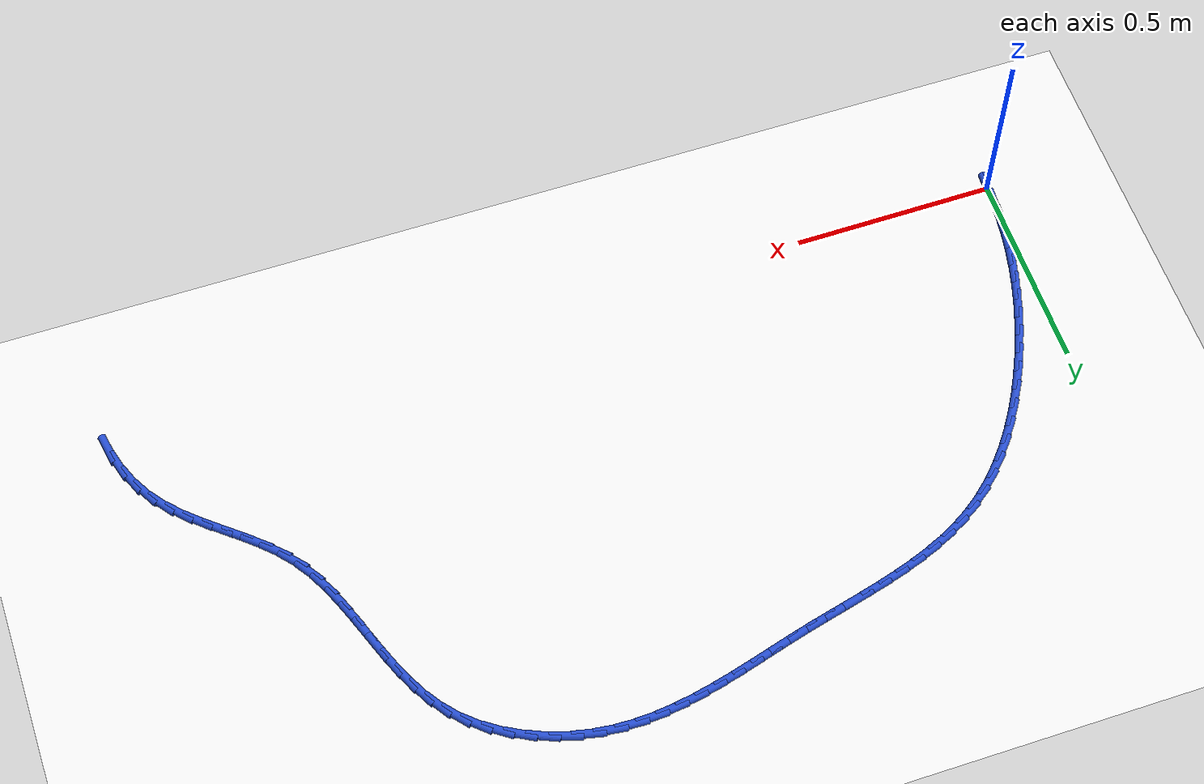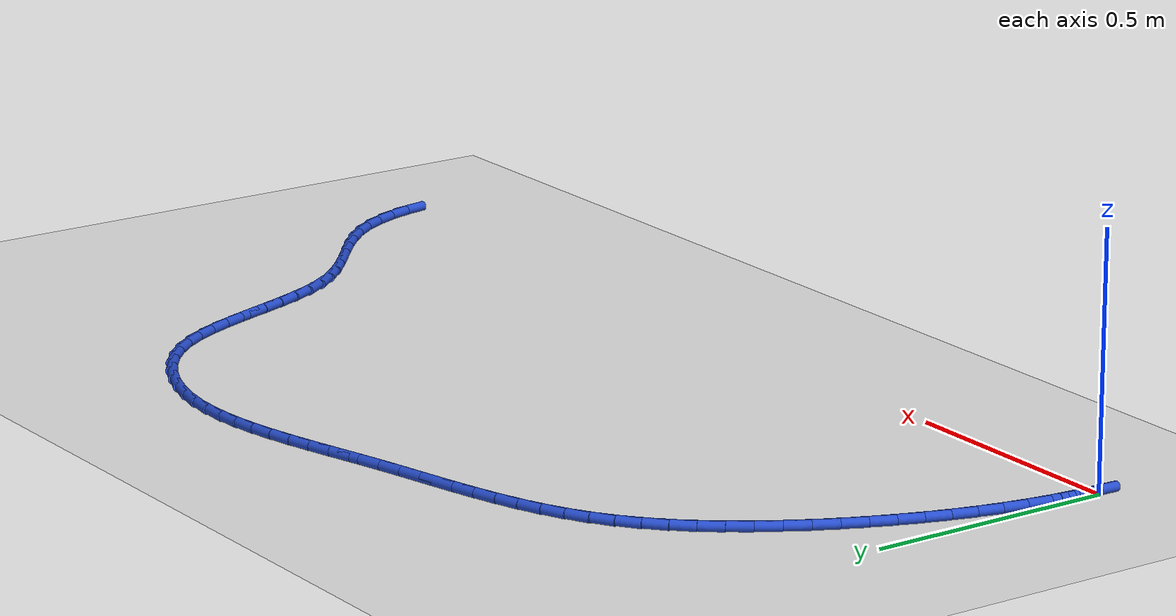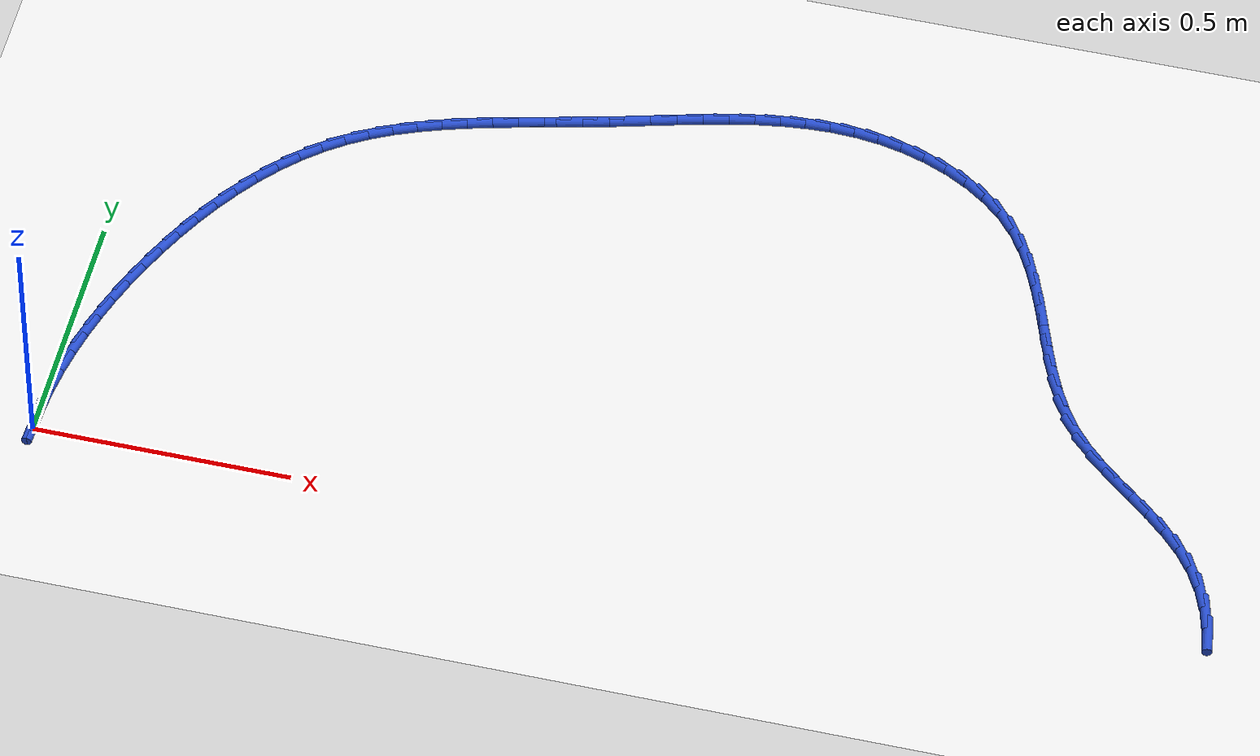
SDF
<sdf version="1.6">
 <world name="default">
  <model name="ground_plane">
   <static>1</static>
   <link name="link">
    <collision name="collision">
     <geometry><plane><normal>0 0 1</normal><size>100 100</size></plane></geometry>
     <surface><friction><ode><mu>100</mu><mu2>50</mu2></ode></friction></surface>
    </collision>
    <visual name="visual">
     <cast_shadows>0</cast_shadows>
     <geometry><plane><normal>0 0 1</normal><size>100 100</size></plane></geometry>
     <material>
      <script><uri>file://media/materials/scripts/gazebo.material</uri><name>Gazebo/WhiteGlow</name></script>
     </material>
    </visual>
   </link>
  </model>
  <model name="line">
   <link name="link_0">
    <pose>-3.8163916471489756e-17 0.0 0.01 0 1.57 1.53081087506077</pose>
    <collision name="collision">
     <geometry><cylinder><radius>0.01</radius><length>0.08</length></cylinder></geometry>
    </collision>
    <visual name="visual">
     <material>
      <script><name>Gazebo/Blue</name><uri>file://media/materials/scripts/gazebo.material</uri></script>
     </material>
     <geometry><cylinder><radius>0.01</radius><length>0.08</length></cylinder></geometry>
    </visual>
   </link>
   <link name="link_1">
    <pose>0.001979722527505519 0.04948468118032241 0.01 0 1.57 1.4807791218871105</pose>
    <collision name="collision">
     <geometry><cylinder><radius>0.01</radius><length>0.08</length></cylinder></geometry>
    </collision>
    <visual name="visual">
     <material>
      <script><name>Gazebo/Blue</name><uri>file://media/materials/scripts/gazebo.material</uri></script>
     </material>
     <geometry><cylinder><radius>0.01</radius><length>0.08</length></cylinder></geometry>
    </visual>
   </link>
   <link name="link_2">
    <pose>0.0064161780831841105 0.09863601921336904 0.01 0 1.57 1.4322933718045248</pose>
    <collision name="collision">
     <geometry><cylinder><radius>0.01</radius><length>0.08</length></cylinder></geometry>
    </collision>
    <visual name="visual">
     <material>
      <script><name>Gazebo/Blue</name><uri>file://media/materials/scripts/gazebo.material</uri></script>
     </material>
     <geometry><cylinder><radius>0.01</radius><length>0.08</length></cylinder></geometry>
    </visual>
   </link>
   <link name="link_3">
    <pose>0.013221445217248372 0.14745588793199746 0.01 0 1.57 1.3855633104081833</pose>
    <collision name="collision">
     <geometry><cylinder><radius>0.01</radius><length>0.08</length></cylinder></geometry>
    </collision>
    <visual name="visual">
     <material>
      <script><name>Gazebo/Blue</name><uri>file://media/materials/scripts/gazebo.material</uri></script>
     </material>
     <geometry><cylinder><radius>0.01</radius><length>0.08</length></cylinder></geometry>
    </visual>
   </link>
   <link name="link_4">
    <pose>0.022307602479910926 0.1959461611690652 0.01 0 1.57 1.3407533342091134</pose>
    <collision name="collision">
     <geometry><cylinder><radius>0.01</radius><length>0.08</length></cylinder></geometry>
    </collision>
    <visual name="visual">
     <material>
      <script><name>Gazebo/Blue</name><uri>file://media/materials/scripts/gazebo.material</uri></script>
     </material>
     <geometry><cylinder><radius>0.01</radius><length>0.08</length></cylinder></geometry>
    </visual>
   </link>
   <link name="link_5">
    <pose>0.033586728421384465 0.24410871275742999 0.01 0 1.57 1.297983495147994</pose>
    <collision name="collision">
     <geometry><cylinder><radius>0.01</radius><length>0.08</length></cylinder></geometry>
    </collision>
    <visual name="visual">
     <material>
      <script><name>Gazebo/Blue</name><uri>file://media/materials/scripts/gazebo.material</uri></script>
     </material>
     <geometry><cylinder><radius>0.01</radius><length>0.08</length></cylinder></geometry>
    </visual>
   </link>
   <link name="link_6">
    <pose>0.04697090159188157 0.2919454165299492 0.01 0 1.57 1.2573325092678005</pose>
    <collision name="collision">
     <geometry><cylinder><radius>0.01</radius><length>0.08</length></cylinder></geometry>
    </collision>
    <visual name="visual">
     <material>
      <script><name>Gazebo/Blue</name><uri>file://media/materials/scripts/gazebo.material</uri></script>
     </material>
     <geometry><cylinder><radius>0.01</radius><length>0.08</length></cylinder></geometry>
    </visual>
   </link>
   <link name="link_7">
    <pose>0.06237220054161491 0.33945814631948057 0.01 0 1.57 1.2188421979531288</pose>
    <collision name="collision">
     <geometry><cylinder><radius>0.01</radius><length>0.08</length></cylinder></geometry>
    </collision>
    <visual name="visual">
     <material>
      <script><name>Gazebo/Blue</name><uri>file://media/materials/scripts/gazebo.material</uri></script>
     </material>
     <geometry><cylinder><radius>0.01</radius><length>0.08</length></cylinder></geometry>
    </visual>
   </link>
   <link name="link_8">
    <pose>0.07970270382079712 0.38664877595888164 0.01 0 1.57 1.1825227483022343</pose>
    <collision name="collision">
     <geometry><cylinder><radius>0.01</radius><length>0.08</length></cylinder></geometry>
    </collision>
    <visual name="visual">
     <material>
      <script><name>Gazebo/Blue</name><uri>file://media/materials/scripts/gazebo.material</uri></script>
     </material>
     <geometry><cylinder><radius>0.01</radius><length>0.08</length></cylinder></geometry>
    </visual>
   </link>
   <link name="link_9">
    <pose>0.09887448997964086 0.43351917928101014 0.01 0 1.57 1.147494360723241</pose>
    <collision name="collision">
     <geometry><cylinder><radius>0.01</radius><length>0.08</length></cylinder></geometry>
    </collision>
    <visual name="visual">
     <material>
      <script><name>Gazebo/Blue</name><uri>file://media/materials/scripts/gazebo.material</uri></script>
     </material>
     <geometry><cylinder><radius>0.01</radius><length>0.08</length></cylinder></geometry>
    </visual>
   </link>
   <link name="link_10">
    <pose>0.11982236632792301 0.48001433748194094 0.01 0 1.57 1.1100176047385018</pose>
    <collision name="collision">
     <geometry><cylinder><radius>0.01</radius><length>0.08</length></cylinder></geometry>
    </collision>
    <visual name="visual">
     <material>
      <script><name>Gazebo/Blue</name><uri>file://media/materials/scripts/gazebo.material</uri></script>
     </material>
     <geometry><cylinder><radius>0.01</radius><length>0.08</length></cylinder></geometry>
    </visual>
   </link>
   <link name="link_11">
    <pose>0.14257420913017707 0.525846269715818 0.01 0 1.57 1.0687088998159535</pose>
    <collision name="collision">
     <geometry><cylinder><radius>0.01</radius><length>0.08</length></cylinder></geometry>
    </collision>
    <visual name="visual">
     <material>
      <script><name>Gazebo/Blue</name><uri>file://media/materials/scripts/gazebo.material</uri></script>
     </material>
     <geometry><cylinder><radius>0.01</radius><length>0.08</length></cylinder></geometry>
    </visual>
   </link>
   <link name="link_12">
    <pose>0.16718171306497284 0.5706673749725314 0.01 0 1.57 1.0230122690982648</pose>
    <collision name="collision">
     <geometry><cylinder><radius>0.01</radius><length>0.08</length></cylinder></geometry>
    </collision>
    <visual name="visual">
     <material>
      <script><name>Gazebo/Blue</name><uri>file://media/materials/scripts/gazebo.material</uri></script>
     </material>
     <geometry><cylinder><radius>0.01</radius><length>0.08</length></cylinder></geometry>
    </visual>
   </link>
   <link name="link_13">
    <pose>0.19369657282194294 0.6141300522142797 0.01 0 1.57 0.972320734226884</pose>
    <collision name="collision">
     <geometry><cylinder><radius>0.01</radius><length>0.08</length></cylinder></geometry>
    </collision>
    <visual name="visual">
     <material>
      <script><name>Gazebo/Blue</name><uri>file://media/materials/scripts/gazebo.material</uri></script>
     </material>
     <geometry><cylinder><radius>0.01</radius><length>0.08</length></cylinder></geometry>
    </visual>
   </link>
   <link name="link_14">
    <pose>0.2221704830907201 0.6558867004032614 0.01 0 1.57 0.915989460977842</pose>
    <collision name="collision">
     <geometry><cylinder><radius>0.01</radius><length>0.08</length></cylinder></geometry>
    </collision>
    <visual name="visual">
     <material>
      <script><name>Gazebo/Blue</name><uri>file://media/materials/scripts/gazebo.material</uri></script>
     </material>
     <geometry><cylinder><radius>0.01</radius><length>0.08</length></cylinder></geometry>
    </visual>
   </link>
   <link name="link_15">
    <pose>0.25265513856093696 0.6955897185016748 0.01 0 1.57 0.8533644342717482</pose>
    <collision name="collision">
     <geometry><cylinder><radius>0.01</radius><length>0.08</length></cylinder></geometry>
    </collision>
    <visual name="visual">
     <material>
      <script><name>Gazebo/Blue</name><uri>file://media/materials/scripts/gazebo.material</uri></script>
     </material>
     <geometry><cylinder><radius>0.01</radius><length>0.08</length></cylinder></geometry>
    </visual>
   </link>
   <link name="link_16">
    <pose>0.2852022339222263 0.7328915054717189 0.01 0 1.57 0.7838338157106821</pose>
    <collision name="collision">
     <geometry><cylinder><radius>0.01</radius><length>0.08</length></cylinder></geometry>
    </collision>
    <visual name="visual">
     <material>
      <script><name>Gazebo/Blue</name><uri>file://media/materials/scripts/gazebo.material</uri></script>
     </material>
     <geometry><cylinder><radius>0.01</radius><length>0.08</length></cylinder></geometry>
    </visual>
   </link>
   <link name="link_17">
    <pose>0.31986346386422077 0.7674444602755917 0.01 0 1.57 0.7069092411978829</pose>
    <collision name="collision">
     <geometry><cylinder><radius>0.01</radius><length>0.08</length></cylinder></geometry>
    </collision>
    <visual name="visual">
     <material>
      <script><name>Gazebo/Blue</name><uri>file://media/materials/scripts/gazebo.material</uri></script>
     </material>
     <geometry><cylinder><radius>0.01</radius><length>0.08</length></cylinder></geometry>
    </visual>
   </link>
   <link name="link_18">
    <pose>0.35669052307655286 0.7989009818754916 0.01 0 1.57 0.6224150532274418</pose>
    <collision name="collision">
     <geometry><cylinder><radius>0.01</radius><length>0.08</length></cylinder></geometry>
    </collision>
    <visual name="visual">
     <material>
      <script><name>Gazebo/Blue</name><uri>file://media/materials/scripts/gazebo.material</uri></script>
     </material>
     <geometry><cylinder><radius>0.01</radius><length>0.08</length></cylinder></geometry>
    </visual>
   </link>
   <link name="link_19">
    <pose>0.39573379636541733 0.8269169212588227 0.01 0 1.57 0.5365468488485532</pose>
    <collision name="collision">
     <geometry><cylinder><radius>0.01</radius><length>0.08</length></cylinder></geometry>
    </collision>
    <visual name="visual">
     <material>
      <script><name>Gazebo/Blue</name><uri>file://media/materials/scripts/gazebo.material</uri></script>
     </material>
     <geometry><cylinder><radius>0.01</radius><length>0.08</length></cylinder></geometry>
    </visual>
   </link>
   <link name="link_20">
    <pose>0.43693913742727486 0.8514236073791587 0.01 0 1.57 0.4605530182431533</pose>
    <collision name="collision">
     <geometry><cylinder><radius>0.01</radius><length>0.08</length></cylinder></geometry>
    </collision>
    <visual name="visual">
     <material>
      <script><name>Gazebo/Blue</name><uri>file://media/materials/scripts/gazebo.material</uri></script>
     </material>
     <geometry><cylinder><radius>0.01</radius><length>0.08</length></cylinder></geometry>
    </visual>
   </link>
   <link name="link_21">
    <pose>0.4800733864922416 0.8728241355929346 0.01 0 1.57 0.39615801604458734</pose>
    <collision name="collision">
     <geometry><cylinder><radius>0.01</radius><length>0.08</length></cylinder></geometry>
    </collision>
    <visual name="visual">
     <material>
      <script><name>Gazebo/Blue</name><uri>file://media/materials/scripts/gazebo.material</uri></script>
     </material>
     <geometry><cylinder><radius>0.01</radius><length>0.08</length></cylinder></geometry>
    </visual>
   </link>
   <link name="link_22">
    <pose>0.5248858121714914 0.8915679089429837 0.01 0 1.57 0.3434493236026865</pose>
    <collision name="collision">
     <geometry><cylinder><radius>0.01</radius><length>0.08</length></cylinder></geometry>
    </collision>
    <visual name="visual">
     <material>
      <script><name>Gazebo/Blue</name><uri>file://media/materials/scripts/gazebo.material</uri></script>
     </material>
     <geometry><cylinder><radius>0.01</radius><length>0.08</length></cylinder></geometry>
    </visual>
   </link>
   <link name="link_23">
    <pose>0.5711256830761985 0.90810433047214 0.01 0 1.57 0.30213133555002225</pose>
    <collision name="collision">
     <geometry><cylinder><radius>0.01</radius><length>0.08</length></cylinder></geometry>
    </collision>
    <visual name="visual">
     <material>
      <script><name>Gazebo/Blue</name><uri>file://media/materials/scripts/gazebo.material</uri></script>
     </material>
     <geometry><cylinder><radius>0.01</radius><length>0.08</length></cylinder></geometry>
    </visual>
   </link>
   <link name="link_24">
    <pose>0.6185422678175366 0.9228828032232371 0.01 0 1.57 0.2717424104209548</pose>
    <collision name="collision">
     <geometry><cylinder><radius>0.01</radius><length>0.08</length></cylinder></geometry>
    </collision>
    <visual name="visual">
     <material>
      <script><name>Gazebo/Blue</name><uri>file://media/materials/scripts/gazebo.material</uri></script>
     </material>
     <geometry><cylinder><radius>0.01</radius><length>0.08</length></cylinder></geometry>
    </visual>
   </link>
   <link name="link_25">
    <pose>0.6668848350066798 0.9363527302391085 0.01 0 1.57 0.2518086556088177</pose>
    <collision name="collision">
     <geometry><cylinder><radius>0.01</radius><length>0.08</length></cylinder></geometry>
    </collision>
    <visual name="visual">
     <material>
      <script><name>Gazebo/Blue</name><uri>file://media/materials/scripts/gazebo.material</uri></script>
     </material>
     <geometry><cylinder><radius>0.01</radius><length>0.08</length></cylinder></geometry>
    </visual>
   </link>
   <link name="link_26">
    <pose>0.7159026532548021 0.9489635145625879 0.01 0 1.57 0.241939390597196</pose>
    <collision name="collision">
     <geometry><cylinder><radius>0.01</radius><length>0.08</length></cylinder></geometry>
    </collision>
    <visual name="visual">
     <material>
      <script><name>Gazebo/Blue</name><uri>file://media/materials/scripts/gazebo.material</uri></script>
     </material>
     <geometry><cylinder><radius>0.01</radius><length>0.08</length></cylinder></geometry>
    </visual>
   </link>
   <link name="link_27">
    <pose>0.7653449911730771 0.9611645592365086 0.01 0 1.57 0.241878161584756</pose>
    <collision name="collision">
     <geometry><cylinder><radius>0.01</radius><length>0.08</length></cylinder></geometry>
    </collision>
    <visual name="visual">
     <material>
      <script><name>Gazebo/Blue</name><uri>file://media/materials/scripts/gazebo.material</uri></script>
     </material>
     <geometry><cylinder><radius>0.01</radius><length>0.08</length></cylinder></geometry>
    </visual>
   </link>
   <link name="link_28">
    <pose>0.8149611173726793 0.9734052673037049 0.01 0 1.57 0.2515210322019817</pose>
    <collision name="collision">
     <geometry><cylinder><radius>0.01</radius><length>0.08</length></cylinder></geometry>
    </collision>
    <visual name="visual">
     <material>
      <script><name>Gazebo/Blue</name><uri>file://media/materials/scripts/gazebo.material</uri></script>
     </material>
     <geometry><cylinder><radius>0.01</radius><length>0.08</length></cylinder></geometry>
    </visual>
   </link>
   <link name="link_29">
    <pose>0.8645003147983724 0.9861349959404173 0.01 0 1.57 0.2668905871740424</pose>
    <collision name="collision">
     <geometry><cylinder><radius>0.01</radius><length>0.08</length></cylinder></geometry>
    </collision>
    <visual name="visual">
     <material>
      <script><name>Gazebo/Blue</name><uri>file://media/materials/scripts/gazebo.material</uri></script>
     </material>
     <geometry><cylinder><radius>0.01</radius><length>0.08</length></cylinder></geometry>
    </visual>
   </link>
   <link name="link_30">
    <pose>0.9137731926237459 0.9996068622212584 0.01 0 1.57 0.2748353361437529</pose>
    <collision name="collision">
     <geometry><cylinder><radius>0.01</radius><length>0.08</length></cylinder></geometry>
    </collision>
    <visual name="visual">
     <material>
      <script><name>Gazebo/Blue</name><uri>file://media/materials/scripts/gazebo.material</uri></script>
     </material>
     <geometry><cylinder><radius>0.01</radius><length>0.08</length></cylinder></geometry>
    </visual>
   </link>
   <link name="link_31">
    <pose>0.9627920031078606 1.0134287379425344 0.01 0 1.57 0.2725943795558558</pose>
    <collision name="collision">
     <geometry><cylinder><radius>0.01</radius><length>0.08</length></cylinder></geometry>
    </collision>
    <visual name="visual">
     <material>
      <script><name>Gazebo/Blue</name><uri>file://media/materials/scripts/gazebo.material</uri></script>
     </material>
     <geometry><cylinder><radius>0.01</radius><length>0.08</length></cylinder></geometry>
    </visual>
   </link>
   <link name="link_32">
    <pose>1.0116103808861336 1.0270760738810756 0.01 0 1.57 0.26001071186416236</pose>
    <collision name="collision">
     <geometry><cylinder><radius>0.01</radius><length>0.08</length></cylinder></geometry>
    </collision>
    <visual name="visual">
     <material>
      <script><name>Gazebo/Blue</name><uri>file://media/materials/scripts/gazebo.material</uri></script>
     </material>
     <geometry><cylinder><radius>0.01</radius><length>0.08</length></cylinder></geometry>
    </visual>
   </link>
   <link name="link_33">
    <pose>1.0602819605939822 1.0400243208137119 0.01 0 1.57 0.2368251089408114</pose>
    <collision name="collision">
     <geometry><cylinder><radius>0.01</radius><length>0.08</length></cylinder></geometry>
    </collision>
    <visual name="visual">
     <material>
      <script><name>Gazebo/Blue</name><uri>file://media/materials/scripts/gazebo.material</uri></script>
     </material>
     <geometry><cylinder><radius>0.01</radius><length>0.08</length></cylinder></geometry>
    </visual>
   </link>
   <link name="link_34">
    <pose>1.1088603768668228 1.0517489295172742 0.01 0 1.57 0.20271159090095395</pose>
    <collision name="collision">
     <geometry><cylinder><radius>0.01</radius><length>0.08</length></cylinder></geometry>
    </collision>
    <visual name="visual">
     <material>
      <script><name>Gazebo/Blue</name><uri>file://media/materials/scripts/gazebo.material</uri></script>
     </material>
     <geometry><cylinder><radius>0.01</radius><length>0.08</length></cylinder></geometry>
    </visual>
   </link>
   <link name="link_35">
    <pose>1.1573992643400726 1.0617253507685922 0.01 0 1.57 0.1573537947079281</pose>
    <collision name="collision">
     <geometry><cylinder><radius>0.01</radius><length>0.08</length></cylinder></geometry>
    </collision>
    <visual name="visual">
     <material>
      <script><name>Gazebo/Blue</name><uri>file://media/materials/scripts/gazebo.material</uri></script>
     </material>
     <geometry><cylinder><radius>0.01</radius><length>0.08</length></cylinder></geometry>
    </visual>
   </link>
   <link name="link_36">
    <pose>1.2059522576491486 1.0694290353444964 0.01 0 1.57 0.10057119876426046</pose>
    <collision name="collision">
     <geometry><cylinder><radius>0.01</radius><length>0.08</length></cylinder></geometry>
    </collision>
    <visual name="visual">
     <material>
      <script><name>Gazebo/Blue</name><uri>file://media/materials/scripts/gazebo.material</uri></script>
     </material>
     <geometry><cylinder><radius>0.01</radius><length>0.08</length></cylinder></geometry>
    </visual>
   </link>
   <link name="link_37">
    <pose>1.2545729914294677 1.0743354340218167 0.01 0 1.57 0.03249768492827597</pose>
    <collision name="collision">
     <geometry><cylinder><radius>0.01</radius><length>0.08</length></cylinder></geometry>
    </collision>
    <visual name="visual">
     <material>
      <script><name>Gazebo/Blue</name><uri>file://media/materials/scripts/gazebo.material</uri></script>
     </material>
     <geometry><cylinder><radius>0.01</radius><length>0.08</length></cylinder></geometry>
    </visual>
   </link>
   <link name="link_38">
    <pose>1.3033151003164465 1.0759199975773834 0.01 0 1.57 -0.04620490824820704</pose>
    <collision name="collision">
     <geometry><cylinder><radius>0.01</radius><length>0.08</length></cylinder></geometry>
    </collision>
    <visual name="visual">
     <material>
      <script><name>Gazebo/Blue</name><uri>file://media/materials/scripts/gazebo.material</uri></script>
     </material>
     <geometry><cylinder><radius>0.01</radius><length>0.08</length></cylinder></geometry>
    </visual>
   </link>
   <link name="link_39">
    <pose>1.352232218945503 1.0736581767880269 0.01 0 1.57 -0.13413293280615798</pose>
    <collision name="collision">
     <geometry><cylinder><radius>0.01</radius><length>0.08</length></cylinder></geometry>
    </collision>
    <visual name="visual">
     <material>
      <script><name>Gazebo/Blue</name><uri>file://media/materials/scripts/gazebo.material</uri></script>
     </material>
     <geometry><cylinder><radius>0.01</radius><length>0.08</length></cylinder></geometry>
    </visual>
   </link>
   <link name="link_40">
    <pose>1.401376419201328 1.0670265017133975 0.01 0 1.57 -0.22668272803391348</pose>
    <collision name="collision">
     <geometry><cylinder><radius>0.01</radius><length>0.08</length></cylinder></geometry>
    </collision>
    <visual name="visual">
     <material>
      <script><name>Gazebo/Blue</name><uri>file://media/materials/scripts/gazebo.material</uri></script>
     </material>
     <geometry><cylinder><radius>0.01</radius><length>0.08</length></cylinder></geometry>
    </visual>
   </link>
   <link name="link_41">
    <pose>1.4505266011161937 1.0556901631399138 0.01 0 1.57 -0.3190634901556683</pose>
    <collision name="collision">
     <geometry><cylinder><radius>0.01</radius><length>0.08</length></cylinder></geometry>
    </collision>
    <visual name="visual">
     <material>
      <script><name>Gazebo/Blue</name><uri>file://media/materials/scripts/gazebo.material</uri></script>
     </material>
     <geometry><cylinder><radius>0.01</radius><length>0.08</length></cylinder></geometry>
    </visual>
   </link>
   <link name="link_42">
    <pose>1.4988785211215883 1.0397170884264384 0.01 0 1.57 -0.41366919996070306</pose>
    <collision name="collision">
     <geometry><cylinder><radius>0.01</radius><length>0.08</length></cylinder></geometry>
    </collision>
    <visual name="visual">
     <material>
      <script><name>Gazebo/Blue</name><uri>file://media/materials/scripts/gazebo.material</uri></script>
     </material>
     <geometry><cylinder><radius>0.01</radius><length>0.08</length></cylinder></geometry>
    </visual>
   </link>
   <link name="link_43">
    <pose>1.5455529595109843 1.0192269857158454 0.01 0 1.57 -0.5136144983648645</pose>
    <collision name="collision">
     <geometry><cylinder><radius>0.01</radius><length>0.08</length></cylinder></geometry>
    </collision>
    <visual name="visual">
     <material>
      <script><name>Gazebo/Blue</name><uri>file://media/materials/scripts/gazebo.material</uri></script>
     </material>
     <geometry><cylinder><radius>0.01</radius><length>0.08</length></cylinder></geometry>
    </visual>
   </link>
   <link name="link_44">
    <pose>1.5896706965778555 0.9943395631510091 0.01 0 1.57 -0.6219823300720324</pose>
    <collision name="collision">
     <geometry><cylinder><radius>0.01</radius><length>0.08</length></cylinder></geometry>
    </collision>
    <visual name="visual">
     <material>
      <script><name>Gazebo/Blue</name><uri>file://media/materials/scripts/gazebo.material</uri></script>
     </material>
     <geometry><cylinder><radius>0.01</radius><length>0.08</length></cylinder></geometry>
    </visual>
   </link>
   <link name="link_45">
    <pose>1.630352512615673 0.9651745288748044 0.01 0 1.57 -0.7417502772724007</pose>
    <collision name="collision">
     <geometry><cylinder><radius>0.01</radius><length>0.08</length></cylinder></geometry>
    </collision>
    <visual name="visual">
     <material>
      <script><name>Gazebo/Blue</name><uri>file://media/materials/scripts/gazebo.material</uri></script>
     </material>
     <geometry><cylinder><radius>0.01</radius><length>0.08</length></cylinder></geometry>
    </visual>
   </link>
   <link name="link_46">
    <pose>1.6667191879179102 0.9318515910301057 0.01 0 1.57 -0.8731737706783052</pose>
    <collision name="collision">
     <geometry><cylinder><radius>0.01</radius><length>0.08</length></cylinder></geometry>
    </collision>
    <visual name="visual">
     <material>
      <script><name>Gazebo/Blue</name><uri>file://media/materials/scripts/gazebo.material</uri></script>
     </material>
     <geometry><cylinder><radius>0.01</radius><length>0.08</length></cylinder></geometry>
    </visual>
   </link>
   <link name="link_47">
    <pose>1.6980058838474383 0.8945269816575713 0.01 0 1.57 -0.994179210123533</pose>
    <collision name="collision">
     <geometry><cylinder><radius>0.01</radius><length>0.08</length></cylinder></geometry>
    </collision>
    <visual name="visual">
     <material>
      <script><name>Gazebo/Blue</name><uri>file://media/materials/scripts/gazebo.material</uri></script>
     </material>
     <geometry><cylinder><radius>0.01</radius><length>0.08</length></cylinder></geometry>
    </visual>
   </link>
   <link name="link_48">
    <pose>1.7245513964961652 0.85370934287975 0.01 0 1.57 -1.0897222913817504</pose>
    <collision name="collision">
     <geometry><cylinder><radius>0.01</radius><length>0.08</length></cylinder></geometry>
    </collision>
    <visual name="visual">
     <material>
      <script><name>Gazebo/Blue</name><uri>file://media/materials/scripts/gazebo.material</uri></script>
     </material>
     <geometry><cylinder><radius>0.01</radius><length>0.08</length></cylinder></geometry>
    </visual>
   </link>
   <link name="link_49">
    <pose>1.7473120998541447 0.8101045203612101 0.01 0 1.57 -1.1592627033562999</pose>
    <collision name="collision">
     <geometry><cylinder><radius>0.01</radius><length>0.08</length></cylinder></geometry>
    </collision>
    <visual name="visual">
     <material>
      <script><name>Gazebo/Blue</name><uri>file://media/materials/scripts/gazebo.material</uri></script>
     </material>
     <geometry><cylinder><radius>0.01</radius><length>0.08</length></cylinder></geometry>
    </visual>
   </link>
   <link name="link_50">
    <pose>1.7672511432443432 0.764420523250109 0.01 0 1.57 -1.2039484873253772</pose>
    <collision name="collision">
     <geometry><cylinder><radius>0.01</radius><length>0.08</length></cylinder></geometry>
    </collision>
    <visual name="visual">
     <material>
      <script><name>Gazebo/Blue</name><uri>file://media/materials/scripts/gazebo.material</uri></script>
     </material>
     <geometry><cylinder><radius>0.01</radius><length>0.08</length></cylinder></geometry>
    </visual>
   </link>
   <link name="link_51">
    <pose>1.7853316759897284 0.7173653606946067 0.01 0 1.57 -1.2251187419603604</pose>
    <collision name="collision">
     <geometry><cylinder><radius>0.01</radius><length>0.08</length></cylinder></geometry>
    </collision>
    <visual name="visual">
     <material>
      <script><name>Gazebo/Blue</name><uri>file://media/materials/scripts/gazebo.material</uri></script>
     </material>
     <geometry><cylinder><radius>0.01</radius><length>0.08</length></cylinder></geometry>
    </visual>
   </link>
   <link name="link_52">
    <pose>1.802516847413267 0.6696470418428605 0.01 0 1.57 -1.2235610140664208</pose>
    <collision name="collision">
     <geometry><cylinder><radius>0.01</radius><length>0.08</length></cylinder></geometry>
    </collision>
    <visual name="visual">
     <material>
      <script><name>Gazebo/Blue</name><uri>file://media/materials/scripts/gazebo.material</uri></script>
     </material>
     <geometry><cylinder><radius>0.01</radius><length>0.08</length></cylinder></geometry>
    </visual>
   </link>
   <link name="link_53">
    <pose>1.8197698068379258 0.6219735758430299 0.01 0 1.57 -1.1992203350926671</pose>
    <collision name="collision">
     <geometry><cylinder><radius>0.01</radius><length>0.08</length></cylinder></geometry>
    </collision>
    <visual name="visual">
     <material>
      <script><name>Gazebo/Blue</name><uri>file://media/materials/scripts/gazebo.material</uri></script>
     </material>
     <geometry><cylinder><radius>0.01</radius><length>0.08</length></cylinder></geometry>
    </visual>
   </link>
   <link name="link_54">
    <pose>1.8380537035866713 0.5750529718432726 0.01 0 1.57 -1.1512197904056243</pose>
    <collision name="collision">
     <geometry><cylinder><radius>0.01</radius><length>0.08</length></cylinder></geometry>
    </collision>
    <visual name="visual">
     <material>
      <script><name>Gazebo/Blue</name><uri>file://media/materials/scripts/gazebo.material</uri></script>
     </material>
     <geometry><cylinder><radius>0.01</radius><length>0.08</length></cylinder></geometry>
    </visual>
   </link>
   <link name="link_55">
    <pose>1.8583316869824724 0.5295932389917475 0.01 0 1.57 -1.0782032874842342</pose>
    <collision name="collision">
     <geometry><cylinder><radius>0.01</radius><length>0.08</length></cylinder></geometry>
    </collision>
    <visual name="visual">
     <material>
      <script><name>Gazebo/Blue</name><uri>file://media/materials/scripts/gazebo.material</uri></script>
     </material>
     <geometry><cylinder><radius>0.01</radius><length>0.08</length></cylinder></geometry>
    </visual>
   </link>
   <link name="link_56">
    <pose>1.8815669063482938 0.4863023864366133 0.01 0 1.57 -0.979154454333042</pose>
    <collision name="collision">
     <geometry><cylinder><radius>0.01</radius><length>0.08</length></cylinder></geometry>
    </collision>
    <visual name="visual">
     <material>
      <script><name>Gazebo/Blue</name><uri>file://media/materials/scripts/gazebo.material</uri></script>
     </material>
     <geometry><cylinder><radius>0.01</radius><length>0.08</length></cylinder></geometry>
    </visual>
   </link>
   <link name="link_57">
    <pose>1.908722511007104 0.44588842332602785 0.01 0 1.57 -0.8627603080321099</pose>
    <collision name="collision">
     <geometry><cylinder><radius>0.01</radius><length>0.08</length></cylinder></geometry>
    </collision>
    <visual name="visual">
     <material>
      <script><name>Gazebo/Blue</name><uri>file://media/materials/scripts/gazebo.material</uri></script>
     </material>
     <geometry><cylinder><radius>0.01</radius><length>0.08</length></cylinder></geometry>
    </visual>
   </link>
   <link name="link_58">
    <pose>1.940449605453515 0.40882923274522465 0.01 0 1.57 -0.770514575392855</pose>
    <collision name="collision">
     <geometry><cylinder><radius>0.01</radius><length>0.08</length></cylinder></geometry>
    </collision>
    <visual name="visual">
     <material>
      <script><name>Gazebo/Blue</name><uri>file://media/materials/scripts/gazebo.material</uri></script>
     </material>
     <geometry><cylinder><radius>0.01</radius><length>0.08</length></cylinder></geometry>
    </visual>
   </link>
   <link name="link_59">
    <pose>1.975854157489885 0.37446319412046747 0.01 0 1.57 -0.7141520142694131</pose>
    <collision name="collision">
     <geometry><cylinder><radius>0.01</radius><length>0.08</length></cylinder></geometry>
    </collision>
    <visual name="visual">
     <material>
      <script><name>Gazebo/Blue</name><uri>file://media/materials/scripts/gazebo.material</uri></script>
     </material>
     <geometry><cylinder><radius>0.01</radius><length>0.08</length></cylinder></geometry>
    </visual>
   </link>
   <link name="link_60">
    <pose>2.013564753231257 0.3417766285894941 0.01 0 1.57 -0.6919314941801472</pose>
    <collision name="collision">
     <geometry><cylinder><radius>0.01</radius><length>0.08</length></cylinder></geometry>
    </collision>
    <visual name="visual">
     <material>
      <script><name>Gazebo/Blue</name><uri>file://media/materials/scripts/gazebo.material</uri></script>
     </material>
     <geometry><cylinder><radius>0.01</radius><length>0.08</length></cylinder></geometry>
    </visual>
   </link>
   <link name="link_61">
    <pose>2.0522098398991466 0.3097557548591764 0.01 0 1.57 -0.7028529340440991</pose>
    <collision name="collision">
     <geometry><cylinder><radius>0.01</radius><length>0.08</length></cylinder></geometry>
    </collision>
    <visual name="visual">
     <material>
      <script><name>Gazebo/Blue</name><uri>file://media/materials/scripts/gazebo.material</uri></script>
     </material>
     <geometry><cylinder><radius>0.01</radius><length>0.08</length></cylinder></geometry>
    </visual>
   </link>
   <link name="link_62">
    <pose>2.090417864715064 0.27738679163638674 0.01 0 1.57 -0.747364796307066</pose>
    <collision name="collision">
     <geometry><cylinder><radius>0.01</radius><length>0.08</length></cylinder></geometry>
    </collision>
    <visual name="visual">
     <material>
      <script><name>Gazebo/Blue</name><uri>file://media/materials/scripts/gazebo.material</uri></script>
     </material>
     <geometry><cylinder><radius>0.01</radius><length>0.08</length></cylinder></geometry>
    </visual>
   </link>
   <link name="link_63">
    <pose>2.126817274900524 0.2436559576279969 0.01 0 1.57 -0.8270216092875979</pose>
    <collision name="collision">
     <geometry><cylinder><radius>0.01</radius><length>0.08</length></cylinder></geometry>
    </collision>
    <visual name="visual">
     <material>
      <script><name>Gazebo/Blue</name><uri>file://media/materials/scripts/gazebo.material</uri></script>
     </material>
     <geometry><cylinder><radius>0.01</radius><length>0.08</length></cylinder></geometry>
    </visual>
   </link>
   <link name="link_64">
    <pose>2.160036517677037 0.2075494715408795 0.01 0 1.57 -0.9422131920682514</pose>
    <collision name="collision">
     <geometry><cylinder><radius>0.01</radius><length>0.08</length></cylinder></geometry>
    </collision>
    <visual name="visual">
     <material>
      <script><name>Gazebo/Blue</name><uri>file://media/materials/scripts/gazebo.material</uri></script>
     </material>
     <geometry><cylinder><radius>0.01</radius><length>0.08</length></cylinder></geometry>
    </visual>
   </link>
   <link name="link_65">
    <pose>2.1887293442940425 0.16807915091521944 0.01 0 1.57 -1.0714778468137658</pose>
    <collision name="collision">
     <geometry><cylinder><radius>0.01</radius><length>0.08</length></cylinder></geometry>
    </collision>
    <visual name="visual">
     <material>
      <script><name>Gazebo/Blue</name><uri>file://media/materials/scripts/gazebo.material</uri></script>
     </material>
     <geometry><cylinder><radius>0.01</radius><length>0.08</length></cylinder></geometry>
    </visual>
   </link>
   <link name="link_66">
    <pose>2.2122463387295386 0.12496176449180786 0.01 0 1.57 -1.1912126226966444</pose>
    <collision name="collision">
     <geometry><cylinder><radius>0.01</radius><length>0.08</length></cylinder></geometry>
    </collision>
    <visual name="visual">
     <material>
      <script><name>Gazebo/Blue</name><uri>file://media/materials/scripts/gazebo.material</uri></script>
     </material>
     <geometry><cylinder><radius>0.01</radius><length>0.08</length></cylinder></geometry>
    </visual>
   </link>
   <link name="link_67">
    <pose>2.2307054029706626 0.0786903386836411 0.01 0 1.57 -1.300282113759891</pose>
    <collision name="collision">
     <geometry><cylinder><radius>0.01</radius><length>0.08</length></cylinder></geometry>
    </collision>
    <visual name="visual">
     <material>
      <script><name>Gazebo/Blue</name><uri>file://media/materials/scripts/gazebo.material</uri></script>
     </material>
     <geometry><cylinder><radius>0.01</radius><length>0.08</length></cylinder></geometry>
    </visual>
   </link>
   <link name="link_68">
    <pose>2.2442638811306614 0.029797801551579513 0.01 0 1.57 -1.399576229106103</pose>
    <collision name="collision">
     <geometry><cylinder><radius>0.01</radius><length>0.08</length></cylinder></geometry>
    </collision>
    <visual name="visual">
     <material>
      <script><name>Gazebo/Blue</name><uri>file://media/materials/scripts/gazebo.material</uri></script>
     </material>
     <geometry><cylinder><radius>0.01</radius><length>0.08</length></cylinder></geometry>
    </visual>
   </link>
   <link name="link_140">
    <pose>-4.5102810375396984e-17 1.1102230246251565e-16 0.01 0 1.57 1.5305484233798274</pose>
    <collision name="collision">
     <geometry><cylinder><radius>0.01</radius><length>0.08</length></cylinder></geometry>
    </collision>
    <visual name="visual">
     <material>
      <script><name>Gazebo/Blue</name><uri>file://media/materials/scripts/gazebo.material</uri></script>
     </material>
     <geometry><cylinder><radius>0.01</radius><length>0.08</length></cylinder></geometry>
    </visual>
   </link>
   <link name="link_141">
    <pose>0.0019912321917939894 0.04944746712124483 0.01 0 1.57 1.5305484233798277</pose>
    <collision name="collision">
     <geometry><cylinder><radius>0.01</radius><length>0.08</length></cylinder></geometry>
    </collision>
    <visual name="visual">
     <material>
      <script><name>Gazebo/Blue</name><uri>file://media/materials/scripts/gazebo.material</uri></script>
     </material>
     <geometry><cylinder><radius>0.01</radius><length>0.08</length></cylinder></geometry>
    </visual>
   </link>
  </model>
 </world>
</sdf>
